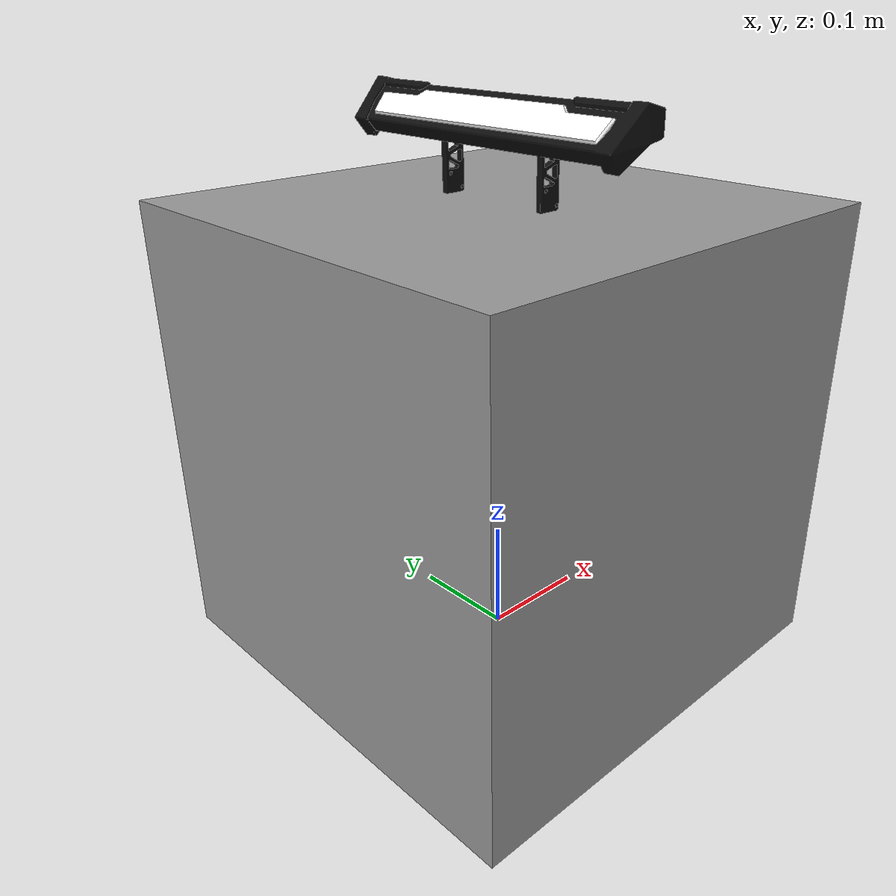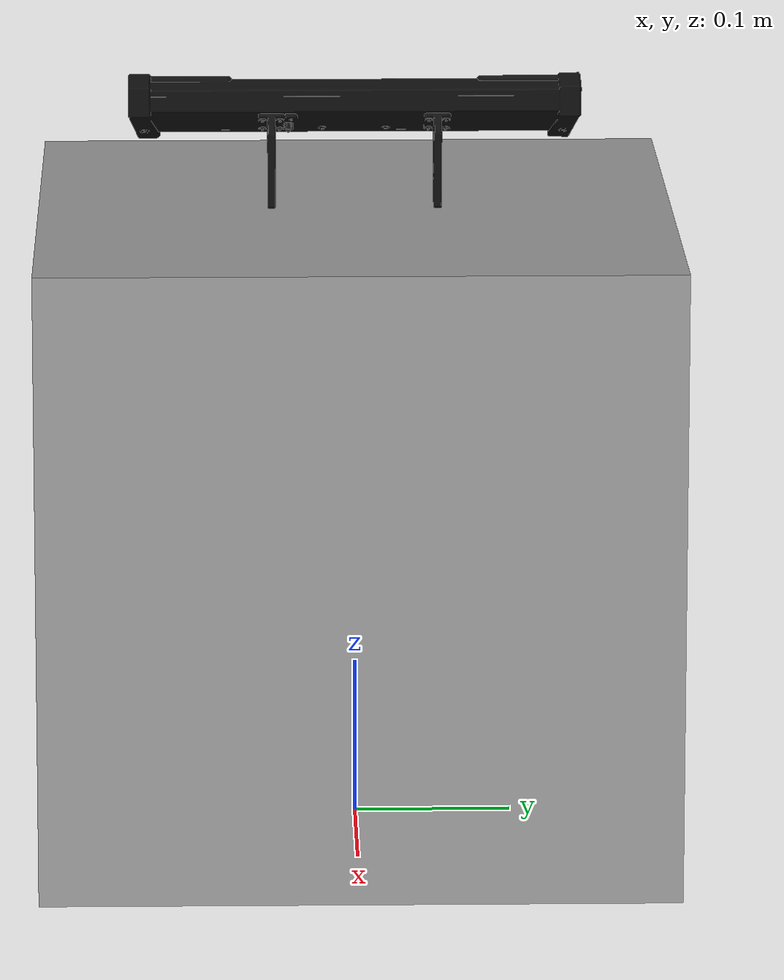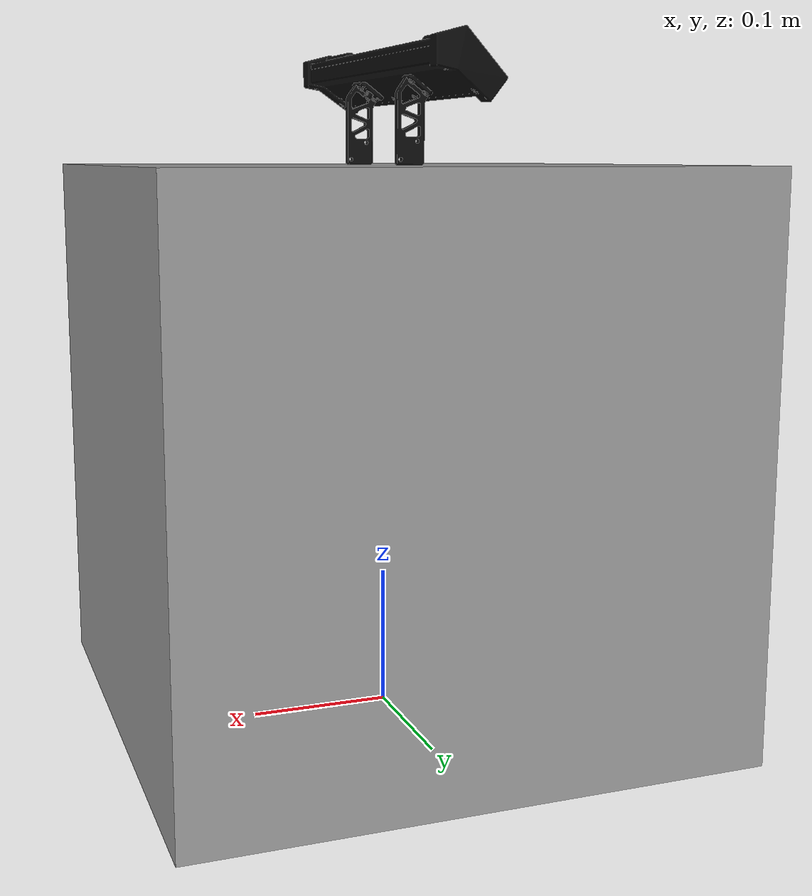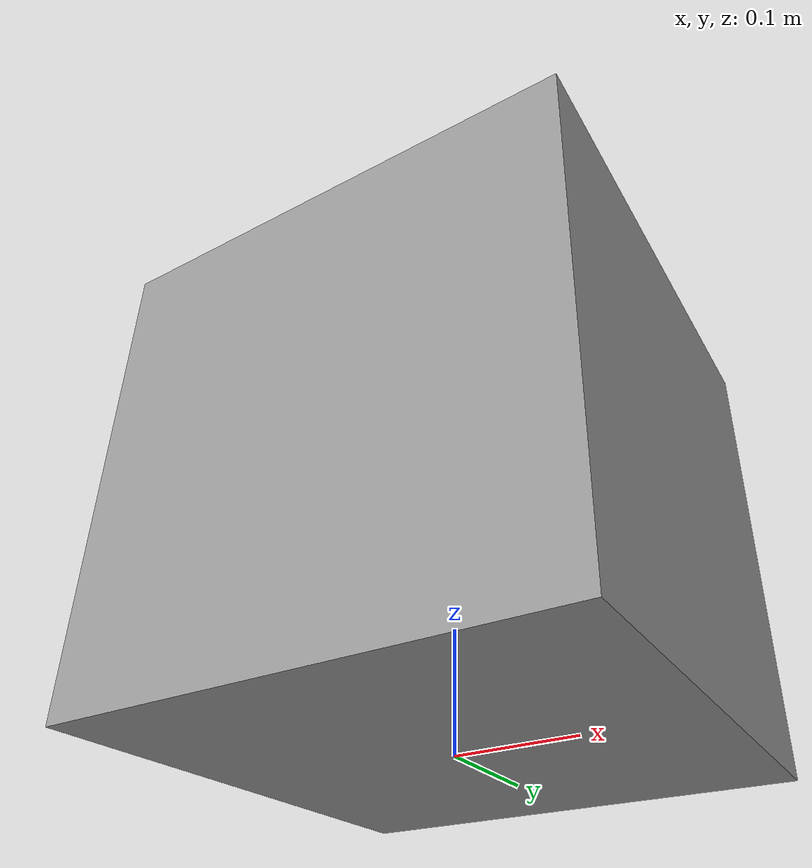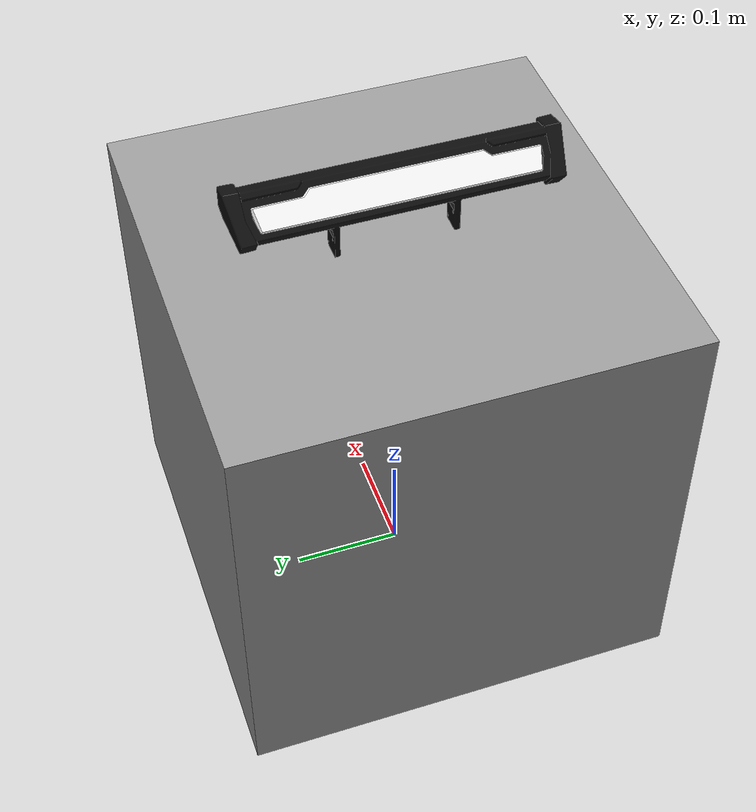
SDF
<?xml version="1.0" ?>
<!-- |    This document was autogenerated by xmacro4sdf from model.sdf.xmacro          | -->
<!-- |    EDITING THIS FILE BY HAND IS NOT RECOMMENDED                                 | -->
<sdf version="1.7">
	<!--include defination-->
	<!--rm22_light_indicator_module example-->
	<model name="rm22_light_indicator_module">
		<pose>0 0 0.2 0 0 0</pose>
		<link name="base_link">
			<inertial>
				<mass>0.4</mass>
				<inertia>
					<ixx>0.01066666666666667</ixx>
					<ixy>0</ixy>
					<ixz>0</ixz>
					<iyy>0.01066666666666667</iyy>
					<iyz>0</iyz>
					<izz>0.01066666666666667</izz>
				</inertia>
			</inertial>
			<visual name="visual">
				<geometry>
					<box>
						<size>0.4 0.4 0.4</size>
					</box>
				</geometry>
				<material>
					<ambient>0.6 0.6 0.6 1</ambient>
					<diffuse>0.6 0.6 0.6 1</diffuse>
				</material>
			</visual>
			<collision name="collision">
				<geometry>
					<box>
						<size>0.4 0.4 0.4</size>
					</box>
				</geometry>
			</collision>
		</link>
		<joint name="light_indicator_joint" type="fixed">
			<pose relative_to="base_link">0 0 0.2 0 0 0</pose>
			<parent>base_link</parent>
			<child>light_indicator</child>
		</joint>
		<link name="light_indicator">
			<pose relative_to="light_indicator_joint">0 0 0 0 0 0</pose>
			<inertial>
				<pose>0 0 0.04 0 0 0</pose>
				<mass>0.1</mass>
				<inertia>
					<ixx>0.0006666666666666669</ixx>
					<ixy>0</ixy>
					<ixz>0</ixz>
					<iyy>3.416666666666667e-05</iyy>
					<iyz>0</iyz>
					<izz>0.0006741666666666668</izz>
				</inertia>
			</inertial>
			<visual name="light_indicator_holder_visual">
				<geometry>
					<mesh>
						<uri>model://rm21_light_indicator_module/meshes/light_indicator_holder.dae</uri>
					</mesh>
				</geometry>
				<material>
					<ambient>0.1 0.1 0.1</ambient>
					<diffuse>0.05 0.05 0.05</diffuse>
					<specular>0.6 0.6 0.6</specular>
				</material>
			</visual>
			<visual name="light_bar_visual">
				<geometry>
					<mesh>
						<uri>model://rm21_light_indicator_module/meshes/light_indicator_bar.dae</uri>
					</mesh>
				</geometry>
				<material>
					<ambient>1.0 1.0 1.0</ambient>
					<diffuse>1.0 1.0 1.0</diffuse>
					<specular>0.5 0.5 0.5</specular>
				</material>
			</visual>
			<collision name="light_bar_collision">
				<pose>0 0 0.06 0 0 0</pose>
				<geometry>
					<box>
						<size>0.05 0.28 0.04</size>
					</box>
				</geometry>
			</collision>
		</link>
	</model>
</sdf>
